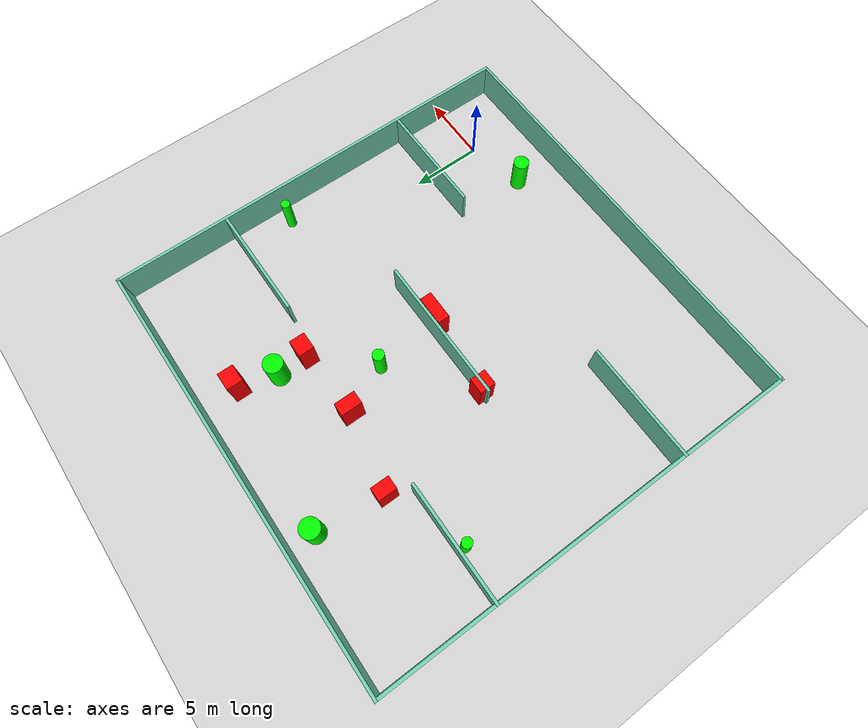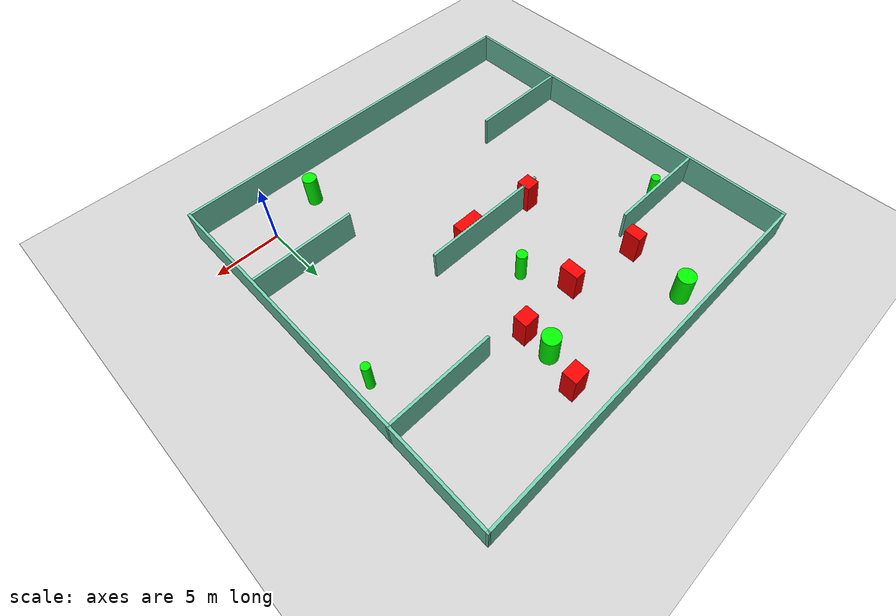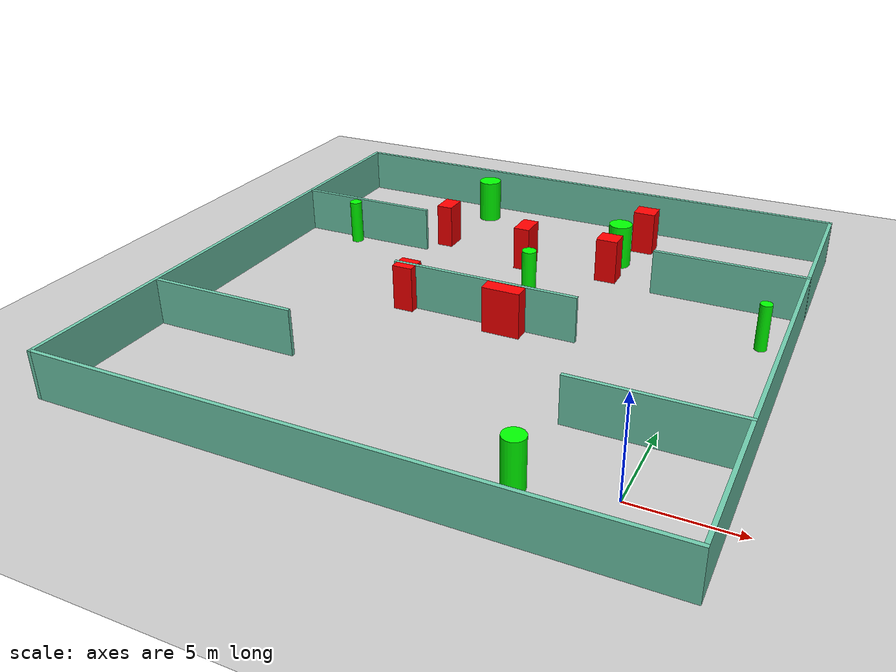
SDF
<sdf version="1.7">
 <world name="default">
  <light name="sun" type="directional">
   <pose>0 0 10 0 -0 0</pose>
   <diffuse>0.8 0.8 0.8 1</diffuse>
   <specular>0.2 0.2 0.2 1</specular>
   <attenuation>
    <range>1000</range>
    <constant>0.9</constant>
    <linear>0.01</linear>
    <quadratic>0.001</quadratic>
   </attenuation>
   <direction>-0.5 0.1 -0.9</direction>
   <spot><inner_angle>0</inner_angle><outer_angle>0</outer_angle><falloff>0</falloff></spot>
  </light>
  <model name="ground_plane">
   <static>1</static>
   <link name="link">
    <collision name="collision">
     <geometry><plane><normal>0 0 1</normal><size>100 100</size></plane></geometry>
     <surface>
      <contact><collide_bitmask>65535</collide_bitmask></contact>
      <friction><ode><mu>100</mu><mu2>50</mu2></ode></friction>
     </surface>
    </collision>
    <visual name="visual">
     <cast_shadows>0</cast_shadows>
     <geometry><plane><normal>0 0 1</normal><size>100 100</size></plane></geometry>
     <material>
      <script><uri>file://media/materials/scripts/gazebo.material</uri><name>Gazebo/Grey</name></script>
     </material>
    </visual>
   </link>
  </model>
  <gravity>0 0 -9.8</gravity>
  <magnetic_field>6e-06 2.3e-05 -4.2e-05</magnetic_field>
  <atmosphere type="adiabatic"/>
  <physics type="ode">
   <max_step_size>0.001</max_step_size>
   <real_time_factor>1</real_time_factor>
   <real_time_update_rate>1000</real_time_update_rate>
  </physics>
  <scene><ambient>0.4 0.4 0.4 1</ambient><background>0.7 0.7 0.7 1</background><shadows>1</shadows></scene>
  <spherical_coordinates>
   <surface_model>EARTH_WGS84</surface_model>
   <latitude_deg>0</latitude_deg>
   <longitude_deg>0</longitude_deg>
   <elevation>0</elevation>
   <heading_deg>0</heading_deg>
  </spherical_coordinates>
  <model name="my_base_walls">
   <link name="Wall_10">
    <collision name="Wall_10_Collision">
     <geometry><box><size>8.2 0.2 2.5</size></box></geometry>
     <pose>0 0 1.25 0 -0 0</pose>
    </collision>
    <visual name="Wall_10_Visual">
     <pose>0 0 1.25 0 -0 0</pose>
     <geometry><box><size>8.2 0.2 2.5</size></box></geometry>
     <material>
      <script><uri>file://media/materials/scripts/gazebo.material</uri><name>Gazebo/Grey</name></script>
      <ambient>0.435294 0.796078 0.67451 1</ambient>
     </material>
     <meta><layer>0</layer></meta>
    </visual>
    <pose>-11 -7 0 0 -0 0</pose>
   </link>
   <link name="Wall_12">
    <collision name="Wall_12_Collision">
     <geometry><box><size>8.2 0.2 2.5</size></box></geometry>
     <pose>0 0 1.25 0 -0 0</pose>
    </collision>
    <visual name="Wall_12_Visual">
     <pose>0 0 1.25 0 -0 0</pose>
     <geometry><box><size>8.2 0.2 2.5</size></box></geometry>
     <material>
      <script><uri>file://media/materials/scripts/gazebo.material</uri><name>Gazebo/Grey</name></script>
      <ambient>0.435294 0.796078 0.67451 1</ambient>
     </material>
     <meta><layer>0</layer></meta>
    </visual>
    <pose>-11 7 0 0 -0 0</pose>
   </link>
   <link name="Wall_14">
    <collision name="Wall_14_Collision">
     <geometry><box><size>8.2 0.2 2.5</size></box></geometry>
     <pose>0 0 1.25 0 -0 0</pose>
    </collision>
    <visual name="Wall_14_Visual">
     <pose>0 0 1.25 0 -0 0</pose>
     <geometry><box><size>8.2 0.2 2.5</size></box></geometry>
     <material>
      <script><uri>file://media/materials/scripts/gazebo.material</uri><name>Gazebo/Grey</name></script>
      <ambient>0.435294 0.796078 0.67451 1</ambient>
     </material>
     <meta><layer>0</layer></meta>
    </visual>
    <pose>11 7 0 0 -0 3.14159</pose>
   </link>
   <link name="Wall_16">
    <collision name="Wall_16_Collision">
     <geometry><box><size>10.2 0.2 2.5</size></box></geometry>
     <pose>0 0 1.25 0 -0 0</pose>
    </collision>
    <visual name="Wall_16_Visual">
     <pose>0 0 1.25 0 -0 0</pose>
     <geometry><box><size>10.2 0.2 2.5</size></box></geometry>
     <material>
      <script><uri>file://media/materials/scripts/gazebo.material</uri><name>Gazebo/Grey</name></script>
      <ambient>0.435294 0.796078 0.67451 1</ambient>
     </material>
     <meta><layer>0</layer></meta>
    </visual>
    <pose>0 0 0 0 -0 3.14159</pose>
   </link>
   <link name="Wall_2">
    <collision name="Wall_2_Collision">
     <geometry><box><size>30.2 0.2 2.5</size></box></geometry>
     <pose>0 0 1.25 0 -0 0</pose>
    </collision>
    <visual name="Wall_2_Visual">
     <pose>0 0 1.25 0 -0 0</pose>
     <geometry><box><size>30.2 0.2 2.5</size></box></geometry>
     <material>
      <script><uri>file://media/materials/scripts/gazebo.material</uri><name>Gazebo/Grey</name></script>
      <ambient>0.435294 0.796078 0.67451 1</ambient>
     </material>
     <meta><layer>0</layer></meta>
    </visual>
    <pose>0 -15 0 0 -0 3.14159</pose>
   </link>
   <link name="Wall_3">
    <collision name="Wall_3_Collision">
     <geometry><box><size>30.2 0.2 2.5</size></box></geometry>
     <pose>0 0 1.25 0 -0 0</pose>
    </collision>
    <visual name="Wall_3_Visual">
     <pose>0 0 1.25 0 -0 0</pose>
     <geometry><box><size>30.2 0.2 2.5</size></box></geometry>
     <material>
      <script><uri>file://media/materials/scripts/gazebo.material</uri><name>Gazebo/Grey</name></script>
      <ambient>0.435294 0.796078 0.67451 1</ambient>
     </material>
     <meta><layer>0</layer></meta>
    </visual>
    <pose>-15 0 0 0 -0 1.5708</pose>
   </link>
   <link name="Wall_4">
    <collision name="Wall_4_Collision">
     <geometry><box><size>30.2 0.2 2.5</size></box></geometry>
     <pose>0 0 1.25 0 -0 0</pose>
    </collision>
    <visual name="Wall_4_Visual">
     <pose>0 0 1.25 0 -0 0</pose>
     <geometry><box><size>30.2 0.2 2.5</size></box></geometry>
     <material>
      <script><uri>file://media/materials/scripts/gazebo.material</uri><name>Gazebo/Grey</name></script>
      <ambient>0.435294 0.796078 0.67451 1</ambient>
     </material>
     <meta><layer>0</layer></meta>
    </visual>
    <pose>0 15 0 0 -0 0</pose>
   </link>
   <link name="Wall_6">
    <collision name="Wall_6_Collision">
     <geometry><box><size>30.2 0.2 2.5</size></box></geometry>
     <pose>0 0 1.25 0 -0 0</pose>
    </collision>
    <visual name="Wall_6_Visual">
     <pose>0 0 1.25 0 -0 0</pose>
     <geometry><box><size>30.2 0.2 2.5</size></box></geometry>
     <material>
      <script><uri>file://media/materials/scripts/gazebo.material</uri><name>Gazebo/Grey</name></script>
      <ambient>0.435294 0.796078 0.67451 1</ambient>
     </material>
     <meta><layer>0</layer></meta>
    </visual>
    <pose>15 0 0 0 -0 1.5708</pose>
   </link>
   <link name="Wall_8">
    <collision name="Wall_8_Collision">
     <geometry><box><size>8.2 0.2 2.5</size></box></geometry>
     <pose>0 0 1.25 0 -0 0</pose>
    </collision>
    <visual name="Wall_8_Visual">
     <pose>0 0 1.25 0 -0 0</pose>
     <geometry><box><size>8.2 0.2 2.5</size></box></geometry>
     <material>
      <script><uri>file://media/materials/scripts/gazebo.material</uri><name>Gazebo/Grey</name></script>
      <ambient>0.435294 0.796078 0.67451 1</ambient>
     </material>
     <meta><layer>0</layer></meta>
    </visual>
    <pose>11 -7 0 0 -0 3.14159</pose>
   </link>
   <static>1</static>
   <pose>-11 11 0 0 -0 0</pose>
  </model>
  <model name="cylinder1">
   <static>1</static>
   <link name="link">
    <inertial>
     <mass>1</mass>
     <inertia><ixx>0.5</ixx><ixy>0</ixy><ixz>0</ixz><iyy>0.5</iyy><iyz>0</iyz><izz>1</izz></inertia>
    </inertial>
    <collision name="collision">
     <geometry><cylinder><radius>0.537426167700956</radius><length>2.5</length></cylinder></geometry>
    </collision>
    <visual name="visual">
     <geometry><cylinder><radius>0.537426167700956</radius><length>2.5</length></cylinder></geometry>
     <material>
      <ambient>0 1 0 1</ambient>
      <diffuse>0 1 0 1</diffuse>
      <specular>0.1 0.1 0.1 1</specular>
      <emissive>0 0 0 0</emissive>
     </material>
    </visual>
   </link>
   <pose>-4.137614866222744 -0.9198304044792627 1.25 0 0 0</pose>
  </model>
  <model name="cylinder2">
   <static>1</static>
   <link name="link">
    <inertial>
     <mass>1</mass>
     <inertia><ixx>0.5</ixx><ixy>0</ixy><ixz>0</ixz><iyy>0.5</iyy><iyz>0</iyz><izz>1</izz></inertia>
    </inertial>
    <collision name="collision">
     <geometry><cylinder><radius>0.31560496848026137</radius><length>2.5</length></cylinder></geometry>
    </collision>
    <visual name="visual">
     <geometry><cylinder><radius>0.31560496848026137</radius><length>2.5</length></cylinder></geometry>
     <material>
      <ambient>0 1 0 1</ambient>
      <diffuse>0 1 0 1</diffuse>
      <specular>0.1 0.1 0.1 1</specular>
      <emissive>0 0 0 0</emissive>
     </material>
    </visual>
   </link>
   <pose>2.586197311402465 14.190758556588843 1.25 0 0 0</pose>
  </model>
  <model name="cylinder3">
   <static>1</static>
   <link name="link">
    <inertial>
     <mass>1</mass>
     <inertia><ixx>0.5</ixx><ixy>0</ixy><ixz>0</ixz><iyy>0.5</iyy><iyz>0</iyz><izz>1</izz></inertia>
    </inertial>
    <collision name="collision">
     <geometry><cylinder><radius>0.400189410165288</radius><length>2.5</length></cylinder></geometry>
    </collision>
    <visual name="visual">
     <geometry><cylinder><radius>0.400189410165288</radius><length>2.5</length></cylinder></geometry>
     <material>
      <ambient>0 1 0 1</ambient>
      <diffuse>0 1 0 1</diffuse>
      <specular>0.1 0.1 0.1 1</specular>
      <emissive>0 0 0 0</emissive>
     </material>
    </visual>
   </link>
   <pose>-10.169071683956298 15.173148632356668 1.25 0 0 0</pose>
  </model>
  <model name="cylinder4">
   <static>1</static>
   <link name="link">
    <inertial>
     <mass>1</mass>
     <inertia><ixx>0.5</ixx><ixy>0</ixy><ixz>0</ixz><iyy>0.5</iyy><iyz>0</iyz><izz>1</izz></inertia>
    </inertial>
    <collision name="collision">
     <geometry><cylinder><radius>0.6625103620038556</radius><length>2.5</length></cylinder></geometry>
    </collision>
    <visual name="visual">
     <geometry><cylinder><radius>0.6625103620038556</radius><length>2.5</length></cylinder></geometry>
     <material>
      <ambient>0 1 0 1</ambient>
      <diffuse>0 1 0 1</diffuse>
      <specular>0.1 0.1 0.1 1</specular>
      <emissive>0 0 0 0</emissive>
     </material>
    </visual>
   </link>
   <pose>-16.58138249954637 24.168143084791012 1.25 0 0 0</pose>
  </model>
  <model name="cylinder5">
   <static>1</static>
   <link name="link">
    <inertial>
     <mass>1</mass>
     <inertia><ixx>0.5</ixx><ixy>0</ixy><ixz>0</ixz><iyy>0.5</iyy><iyz>0</iyz><izz>1</izz></inertia>
    </inertial>
    <collision name="collision">
     <geometry><cylinder><radius>0.34482834873947693</radius><length>2.5</length></cylinder></geometry>
    </collision>
    <visual name="visual">
     <geometry><cylinder><radius>0.34482834873947693</radius><length>2.5</length></cylinder></geometry>
     <material>
      <ambient>0 1 0 1</ambient>
      <diffuse>0 1 0 1</diffuse>
      <specular>0.1 0.1 0.1 1</specular>
      <emissive>0 0 0 0</emissive>
     </material>
    </visual>
   </link>
   <pose>-22.430334861424992 17.41147866478777 1.25 0 0 0</pose>
  </model>
  <model name="cylinder6">
   <static>1</static>
   <link name="link">
    <inertial>
     <mass>1</mass>
     <inertia><ixx>0.5</ixx><ixy>0</ixy><ixz>0</ixz><iyy>0.5</iyy><iyz>0</iyz><izz>1</izz></inertia>
    </inertial>
    <collision name="collision">
     <geometry><cylinder><radius>0.6631463163117219</radius><length>2.5</length></cylinder></geometry>
    </collision>
    <visual name="visual">
     <geometry><cylinder><radius>0.6631463163117219</radius><length>2.5</length></cylinder></geometry>
     <material>
      <ambient>0 1 0 1</ambient>
      <diffuse>0 1 0 1</diffuse>
      <specular>0.1 0.1 0.1 1</specular>
      <emissive>0 0 0 0</emissive>
     </material>
    </visual>
   </link>
   <pose>-6.828019137128713 20.791208184272662 1.25 0 0 0</pose>
  </model>
  <model name="box1">
   <static>1</static>
   <link name="link">
    <inertial>
     <mass>1</mass>
     <inertia><ixx>0.083</ixx><ixy>0</ixy><ixz>0</ixz><iyy>0.083</iyy><iyz>0</iyz><izz>0.083</izz></inertia>
    </inertial>
    <collision name="collision">
     <geometry><box><size>2.044066085695765 0.8344032750101398 2.5</size></box></geometry>
    </collision>
    <visual name="visual">
     <geometry><box><size>2.044066085695765 0.8344032750101398 2.5</size></box></geometry>
     <material>
      <ambient>1 0 0 1</ambient>
      <diffuse>1 0 0 1</diffuse>
      <specular>0.1 0.1 0.1 1</specular>
      <emissive>0 0 0 0</emissive>
     </material>
    </visual>
    <sensor name="my_contact" type="contact">
     <contact><collision>box_collision</collision><topic>__default_topic__</topic></contact>
    </sensor>
   </link>
   <pose>-9.6141316605753 10.464676097507 1.25 0 0 0</pose>
  </model>
  <model name="box2">
   <static>1</static>
   <link name="link">
    <inertial>
     <mass>1</mass>
     <inertia><ixx>0.083</ixx><ixy>0</ixy><ixz>0</ixz><iyy>0.083</iyy><iyz>0</iyz><izz>0.083</izz></inertia>
    </inertial>
    <collision name="collision">
     <geometry><box><size>1.1025125380016028 1.0985396979284092 2.5</size></box></geometry>
    </collision>
    <visual name="visual">
     <geometry><box><size>1.1025125380016028 1.0985396979284092 2.5</size></box></geometry>
     <material>
      <ambient>1 0 0 1</ambient>
      <diffuse>1 0 0 1</diffuse>
      <specular>0.1 0.1 0.1 1</specular>
      <emissive>0 0 0 0</emissive>
     </material>
    </visual>
    <sensor name="my_contact" type="contact">
     <contact><collision>box_collision</collision><topic>__default_topic__</topic></contact>
    </sensor>
   </link>
   <pose>-15.365676775806133 10.960121210870106 1.25 0 0 0</pose>
  </model>
  <model name="box3">
   <static>1</static>
   <link name="link">
    <inertial>
     <mass>1</mass>
     <inertia><ixx>0.083</ixx><ixy>0</ixy><ixz>0</ixz><iyy>0.083</iyy><iyz>0</iyz><izz>0.083</izz></inertia>
    </inertial>
    <collision name="collision">
     <geometry><box><size>0.9085643129459069 1.2718068228261346 2.5</size></box></geometry>
    </collision>
    <visual name="visual">
     <geometry><box><size>0.9085643129459069 1.2718068228261346 2.5</size></box></geometry>
     <material>
      <ambient>1 0 0 1</ambient>
      <diffuse>1 0 0 1</diffuse>
      <specular>0.1 0.1 0.1 1</specular>
      <emissive>0 0 0 0</emissive>
     </material>
    </visual>
    <sensor name="my_contact" type="contact">
     <contact><collision>box_collision</collision><topic>__default_topic__</topic></contact>
    </sensor>
   </link>
   <pose>-17.18440232296352 19.51813752167817 1.25 0 0 0</pose>
  </model>
  <model name="box4">
   <static>1</static>
   <link name="link">
    <inertial>
     <mass>1</mass>
     <inertia><ixx>0.083</ixx><ixy>0</ixy><ixz>0</ixz><iyy>0.083</iyy><iyz>0</iyz><izz>0.083</izz></inertia>
    </inertial>
    <collision name="collision">
     <geometry><box><size>1.2001031270787177 1.0701897663682978 2.5</size></box></geometry>
    </collision>
    <visual name="visual">
     <geometry><box><size>1.2001031270787177 1.0701897663682978 2.5</size></box></geometry>
     <material>
      <ambient>1 0 0 1</ambient>
      <diffuse>1 0 0 1</diffuse>
      <specular>0.1 0.1 0.1 1</specular>
      <emissive>0 0 0 0</emissive>
     </material>
    </visual>
    <sensor name="my_contact" type="contact">
     <contact><collision>box_collision</collision><topic>__default_topic__</topic></contact>
    </sensor>
   </link>
   <pose>-6.797301356112662 18.679860342854234 1.25 0 0 0</pose>
  </model>
  <model name="box5">
   <static>1</static>
   <link name="link">
    <inertial>
     <mass>1</mass>
     <inertia><ixx>0.083</ixx><ixy>0</ixy><ixz>0</ixz><iyy>0.083</iyy><iyz>0</iyz><izz>0.083</izz></inertia>
    </inertial>
    <collision name="collision">
     <geometry><box><size>1.2437080211793268 1.0895453588340052 2.5</size></box></geometry>
    </collision>
    <visual name="visual">
     <geometry><box><size>1.2437080211793268 1.0895453588340052 2.5</size></box></geometry>
     <material>
      <ambient>1 0 0 1</ambient>
      <diffuse>1 0 0 1</diffuse>
      <specular>0.1 0.1 0.1 1</specular>
      <emissive>0 0 0 0</emissive>
     </material>
    </visual>
    <sensor name="my_contact" type="contact">
     <contact><collision>box_collision</collision><topic>__default_topic__</topic></contact>
    </sensor>
   </link>
   <pose>-6.062804162292087 23.38376014412176 1.25 0 0 0</pose>
  </model>
  <model name="box6">
   <static>1</static>
   <link name="link">
    <inertial>
     <mass>1</mass>
     <inertia><ixx>0.083</ixx><ixy>0</ixy><ixz>0</ixz><iyy>0.083</iyy><iyz>0</iyz><izz>0.083</izz></inertia>
    </inertial>
    <collision name="collision">
     <geometry><box><size>0.8952248853135747 1.4388877252231156 2.5</size></box></geometry>
    </collision>
    <visual name="visual">
     <geometry><box><size>0.8952248853135747 1.4388877252231156 2.5</size></box></geometry>
     <material>
      <ambient>1 0 0 1</ambient>
      <diffuse>1 0 0 1</diffuse>
      <specular>0.1 0.1 0.1 1</specular>
      <emissive>0 0 0 0</emissive>
     </material>
    </visual>
    <sensor name="my_contact" type="contact">
     <contact><collision>box_collision</collision><topic>__default_topic__</topic></contact>
    </sensor>
   </link>
   <pose>-11.698035109272174 18.409731010906373 1.25 0 0 0</pose>
  </model>
 </world>
</sdf>
